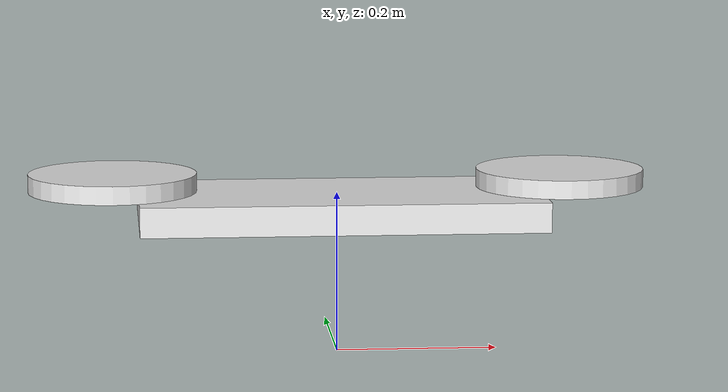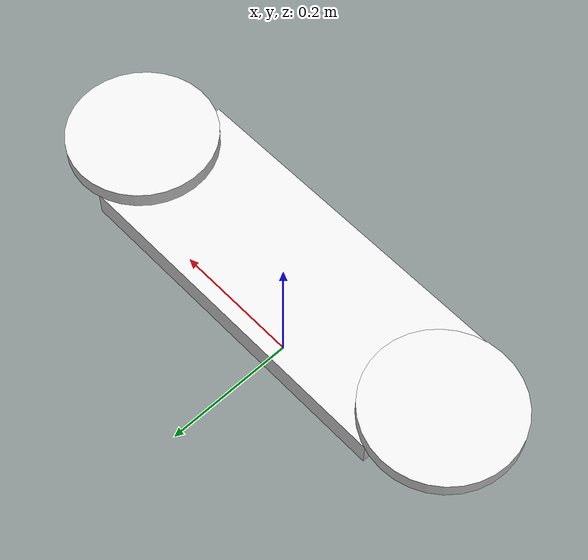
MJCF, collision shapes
<?xml version="1.0"?>
<mujoco model="indian_gas_stove">
    <compiler angle="radian" meshdir="../meshes/" texturedir="../textures/" autolimits="true" inertiafromgeom="false"/>
    <default>
        <default class="indian_gas_stove_visual">
            <geom contype="0" conaffinity="0" />
        </default>
        <default class="indian_gas_stove_collision">
            <geom rgba="0.9 0.9 0.9 0.0" />
        </default>
    </default>
    <asset>
        <mesh name="IndianGasStove" file="obj/IndianGasStove.obj" />
        <mesh name="IndianGasStove_001" file="stl/IndianGasStove_001.stl" />
        <mesh name="IndianGasStove_002" file="stl/IndianGasStove_002.stl" />
        <mesh name="IndianGasStove_003" file="stl/IndianGasStove_003.stl" />
    </asset>
    <worldbody>
        <body name="indian_gas_stove" pos="0.0 0.0 0.2" quat="1.0 0.0 0.0 0.0" >
            <inertial mass="15.88277816772461" pos="0.005977602209895849 -0.01864658296108246 -0.013063529506325722" quat="0.9998757839202881 0.015736917033791542 0.0004497097688727081 -0.0007121074595488608" diaginertia="0.2842991054058075 1.3971433639526367 1.6677054166793823"/>
            <geom name="IndianGasStove" type="mesh" pos="0.0 0.0 0.0" quat="1.0 0.0 0.0 0.0" mesh="IndianGasStove" class="indian_gas_stove_visual"/>
            <geom name="IndianGasStove_001" type="mesh" pos="0.0 0.0 0.0" quat="1.0 0.0 0.0 0.0" mesh="IndianGasStove_001" class="indian_gas_stove_collision"/>
            <geom name="IndianGasStove_002" type="mesh" pos="0.0 0.0 0.0" quat="1.0 0.0 0.0 0.0" mesh="IndianGasStove_002" class="indian_gas_stove_collision"/>
            <geom name="IndianGasStove_003" type="mesh" pos="0.0 0.0 0.0" quat="1.0 0.0 0.0 0.0" mesh="IndianGasStove_003" class="indian_gas_stove_collision"/>
        </body>
    </worldbody>
</mujoco>
